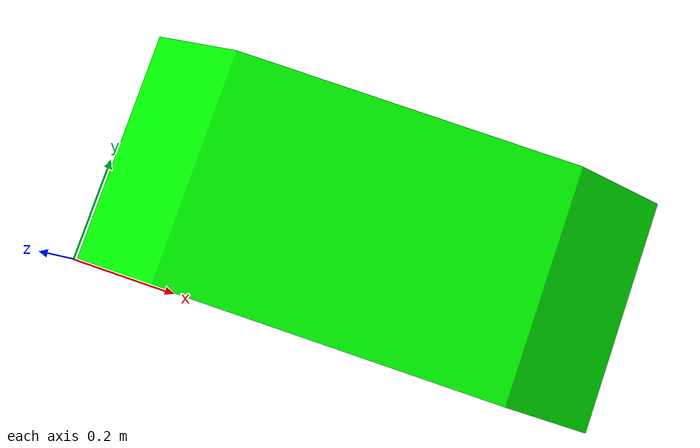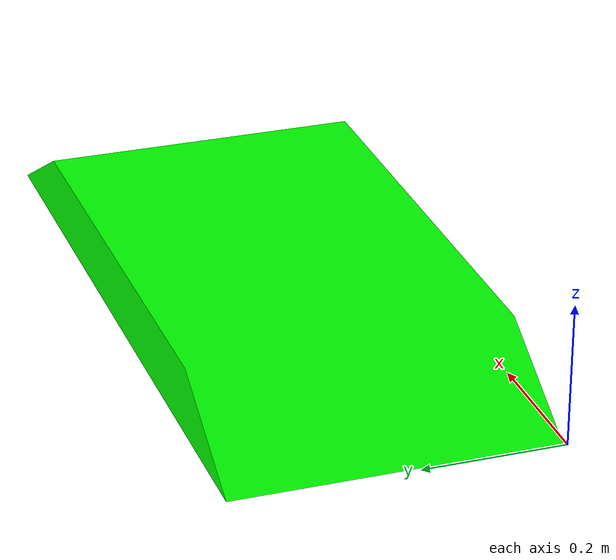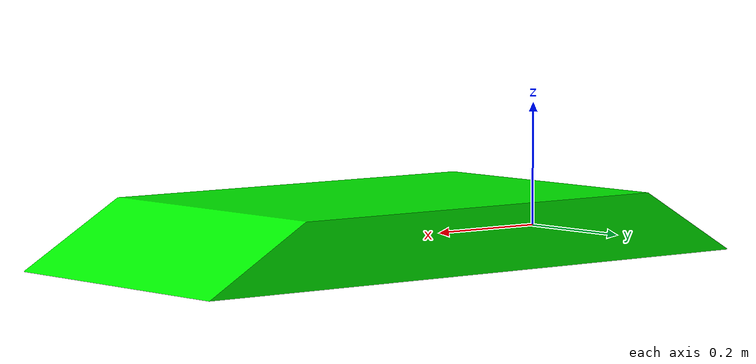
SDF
<?xml version="1.0" ?>
<sdf version="1.6">
  <model name="Slope legged traversable">
    <static>true</static>
    <link name="link">
      <collision name="collision">
        <geometry>
          <mesh>
            <scale>1 1 1</scale>
            <uri>model://Tr_legged/meshes/black_obst_traversable_slope_legged.STL</uri>
          </mesh>
        </geometry>
      </collision>
      <visual name="visual">
        <geometry>
          <mesh>
            <scale>1 1 1</scale>
            <uri>model://Tr_legged/meshes/black_obst_traversable_slope_legged.STL</uri>
          </mesh>
        </geometry>
        <material>
          <ambient>0.5 0.5 0.5 1</ambient>
          <diffuse>0 1 0 1</diffuse>
          <specular>0.1 0.1 0.1 1</specular>
          <emissive>0 0 0 1</emissive>
        </material>
      </visual>
    </link>
  </model>
</sdf>
